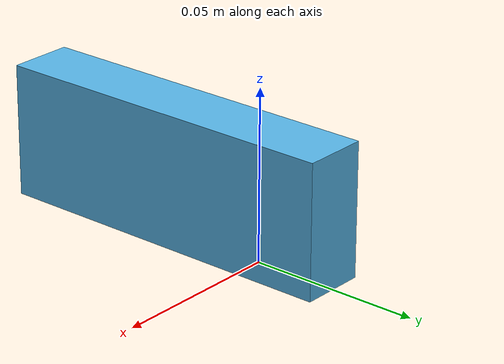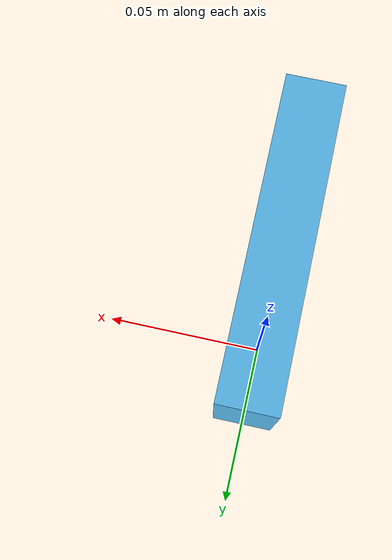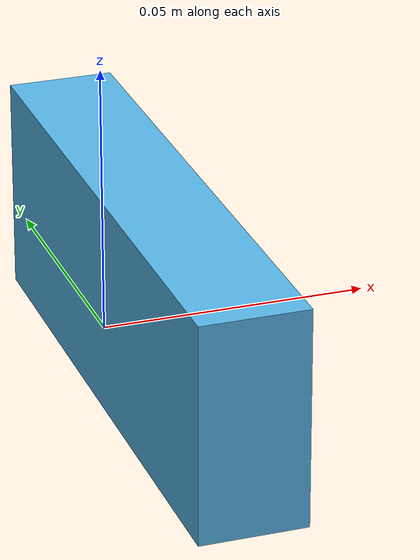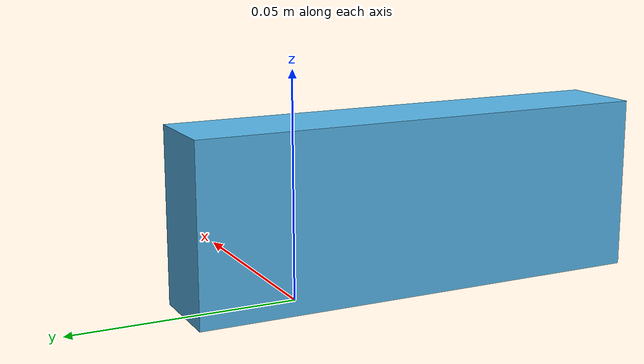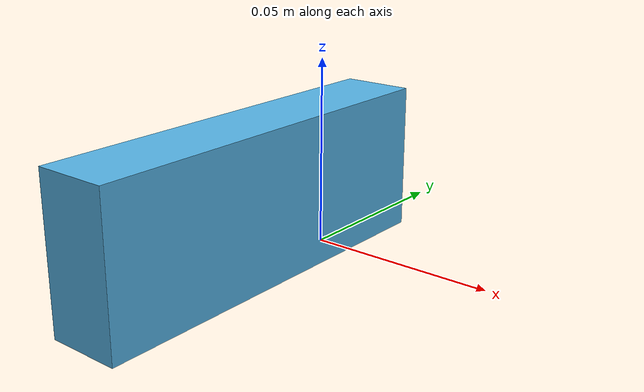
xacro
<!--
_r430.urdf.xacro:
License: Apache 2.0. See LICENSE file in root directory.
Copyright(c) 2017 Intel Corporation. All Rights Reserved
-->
<?xml version="1.0"?>
<robot name="urdf/realsense2_camera" xmlns:xacro="http://ros.org/wiki/xacro">
  <xacro:arg name="use_nominal_extrinsics" default="false"/>
  <xacro:include filename="$(find arena_simulation_setup)/entities/robots/rto/urdf/realsense2/urdf/_r430.urdf.xacro" />

  <link name="base_link" />
  <xacro:sensor_r430 parent="base_link" use_nominal_extrinsics="$(arg use_nominal_extrinsics)">
    <origin xyz="0 0 0" rpy="0 0 0"/>
  </xacro:sensor_r430>
</robot>

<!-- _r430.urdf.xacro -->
<robot name="sensor_r430" xmlns:xacro="http://ros.org/wiki/xacro">
  <!-- Includes -->
  <xacro:include filename="$(find arena_simulation_setup)/entities/robots/rto/urdf/realsense2/urdf/_materials.urdf.xacro" />

  <xacro:macro name="sensor_r430" params="parent *origin name:=camera use_nominal_extrinsics:=false">
  <xacro:property name="M_PI" value="3.1415926535897931" />

  <!-- The following values are approximate, and the camera node
   publishing TF values with actual calibrated camera extrinsic values -->
  <xacro:property name="r430_cam_depth_to_infra1_offset" value="-0.025"/>
  <xacro:property name="r430_cam_depth_to_infra2_offset" value="0.025"/>
  <xacro:property name="r430_cam_depth_to_fisheye_offset" value="0.042"/>

  <!-- The following values model the aluminum peripherial case for the
    R430 camera, with the camera joint represented by the actual
    peripherial camera tripod mount -->
  <xacro:property name="r430_cam_width" value="0.105"/>
  <xacro:property name="r430_cam_height" value="0.039"/>
  <xacro:property name="r430_cam_depth" value="0.019"/>
  <xacro:property name="r430_cam_mount_from_center_offset" value=".0275"/>

  <!-- The following offset is relative the the physical R430 camera peripherial
    camera tripod mount -->
  <xacro:property name="r430_cam_depth_px" value="0.00"/>
  <xacro:property name="r430_cam_depth_py" value="-0.035"/>
  <xacro:property name="r430_cam_depth_pz" value="0.028"/>

    <!-- camera body, with origin at bottom screw mount -->
    <joint name="${name}_joint" type="fixed">
      <xacro:insert_block name="origin" />
      <parent link="${parent}"/>
      <child link="${name}_link" />
    </joint>

    <link name="${name}_link">
      <visual>
      <origin xyz="0 ${-r430_cam_mount_from_center_offset} ${r430_cam_height/2}" rpy="${M_PI/2} 0 ${M_PI/2}"/>
        <geometry>
          <box size="${r430_cam_width} ${r430_cam_height} ${r430_cam_depth}"/>
        </geometry>
        <material name="aluminum"/>
      </visual>
      <collision>
        <origin xyz="0.0 0.0 ${r430_cam_height/2}" rpy="0 0 0"/>
        <geometry>
        <box size="${r430_cam_depth} ${r430_cam_width} ${r430_cam_height}"/>
        </geometry>
      </collision>
      <inertial>
        <!-- The following are not reliable values, and should not be used for modeling -->
        <mass value="0.564" />
        <origin xyz="0 0 0" />
        <inertia ixx="0.003881243" ixy="0.0" ixz="0.0" iyy="0.000498940" iyz="0.0" izz="0.003879257" />
      </inertial>
    </link>

    <!-- Use the nominal extrinsics between camera frames if the calibrated extrinsics aren't being published. e.g. running the device in simulation  -->
    <xacro:if value="${use_nominal_extrinsics}">
      <!-- camera depth joints and links -->
      <joint name="${name}_depth_joint" type="fixed">
        <origin xyz="${r430_cam_depth_px} ${r430_cam_depth_py} ${r430_cam_depth_pz}" rpy="0 0 0"/>
        <parent link="${name}_link"/>
        <child link="${name}_depth_frame" />
      </joint>
      <link name="${name}_depth_frame"/>

      <joint name="${name}_depth_optical_joint" type="fixed">
        <origin xyz="0 0 0" rpy="${-M_PI/2} 0 ${-M_PI/2}" />
        <parent link="${name}_depth_frame" />
        <child link="${name}_depth_optical_frame" />
      </joint>
      <link name="${name}_depth_optical_frame"/>

      <!-- camera left IR joints and links -->
      <joint name="${name}_infra1_joint" type="fixed">
        <origin xyz="0 ${r430_cam_depth_to_infra1_offset} 0" rpy="0 0 0" />
        <parent link="${name}_depth_frame" />
        <child link="${name}_infra1_frame" />
      </joint>
      <link name="${name}_infra1_frame"/>

      <joint name="${name}_infra1_optical_joint" type="fixed">
        <origin xyz="0 0 0" rpy="${-M_PI/2} 0 ${-M_PI/2}" />
        <parent link="${name}_infra1_frame" />
        <child link="${name}_infra1_optical_frame" />
      </joint>
      <link name="${name}_infra1_optical_frame"/>

      <!-- camera right IR joints and links -->
      <joint name="${name}_infra2_joint" type="fixed">
        <origin xyz="0 ${r430_cam_depth_to_infra2_offset} 0" rpy="0 0 0" />
        <parent link="${name}_depth_frame" />
        <child link="${name}_infra2_frame" />
      </joint>
      <link name="${name}_infra2_frame"/>

      <joint name="${name}_infra2_optical_joint" type="fixed">
        <origin xyz="0 0 0" rpy="${-M_PI/2} 0 ${-M_PI/2}" />
        <parent link="${name}_infra2_frame" />
        <child link="${name}_infra2_optical_frame" />
      </joint>
      <link name="${name}_infra2_optical_frame"/>

      <!-- camera fisheye joints and links -->
      <joint name="${name}_fisheye_joint" type="fixed">
        <origin xyz="0 ${r430_cam_depth_to_fisheye_offset} 0" rpy="0 0 0" />
        <parent link="${name}_depth_frame" />
        <child link="${name}_fisheye_frame" />
      </joint>
      <link name="${name}_fisheye_frame"/>

      <joint name="${name}_fisheye_optical_joint" type="fixed">
        <origin xyz="0 0 0" rpy="${-M_PI/2} 0 ${-M_PI/2}" />
        <parent link="${name}_fisheye_frame" />
        <child link="${name}_fisheye_optical_frame" />
      </joint>
      <link name="${name}_fisheye_optical_frame"/>
    </xacro:if>
  </xacro:macro>
</robot>
